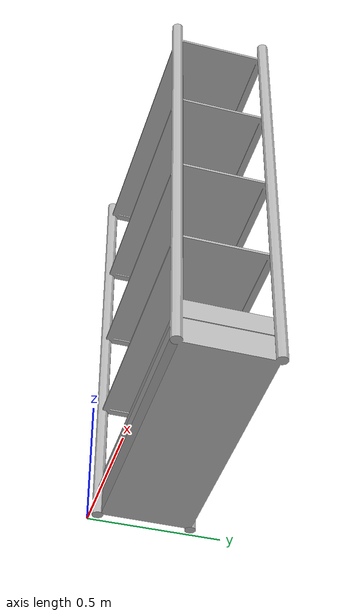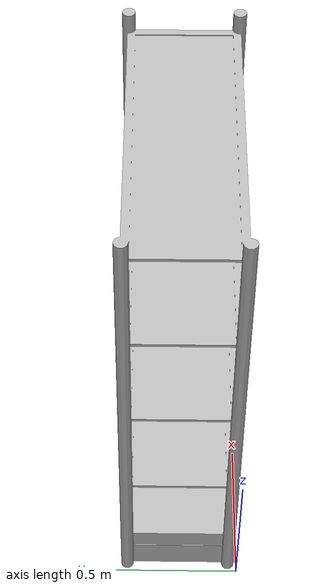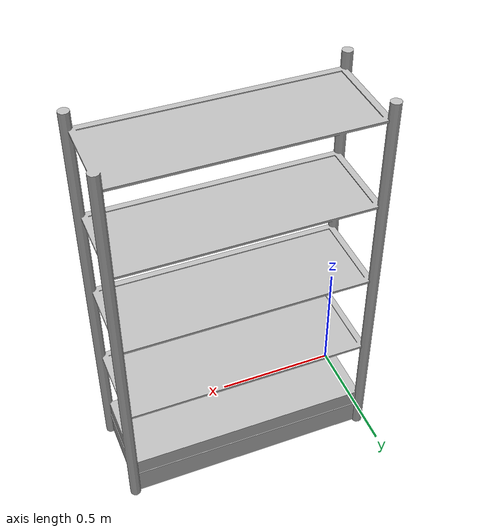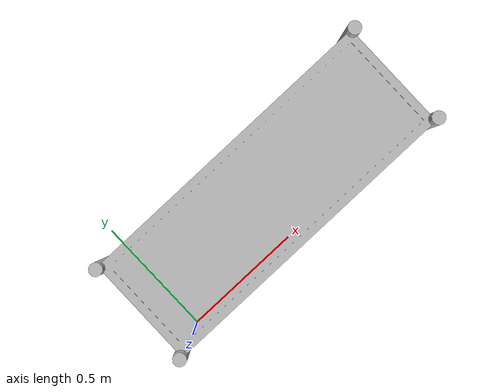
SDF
<?xml version="1.0" ?>
<sdf version="1.6">
  <model name="store_shelf_moduled">
    <link name="link">
      <inertial>
        <mass>1000</mass>
        <inertia>
          <ixx>840083.33</ixx>
          <ixy>0</ixy>
          <ixz>0</ixz>
          <iyy>475500.0</iyy>
          <iyz>0</iyz>
          <izz>1302083.33</izz>
        </inertia>
      </inertial>
      <collision name="collision">
        <geometry>
          <mesh>
            <uri>model://store_shelf_moduled/meshes/store_shelf_moduled.dae</uri>
            <scale>1 1 1</scale>
          </mesh>
        </geometry>
		<surface>
          <friction>
            <ode>
              <mu>0.5</mu>
              <mu2>0.5</mu2>
              <fdir1>0 0 0</fdir1>
              <slip1>0</slip1>
              <slip2>0</slip2>
            </ode>
        </friction>
          </surface>
      </collision>

      <visual name="visual">
	    <geometry>
          <mesh>
            <uri>model://store_shelf_moduled/meshes/store_shelf_moduled.dae</uri>
          </mesh>
          <box>
            <size>7.5 10 2.8</size>
          </box>
        </geometry>
      <meta> <layer> 2 </layer></meta>
      </visual>
    </link>
<static>1</static>
  </model>
</sdf>
